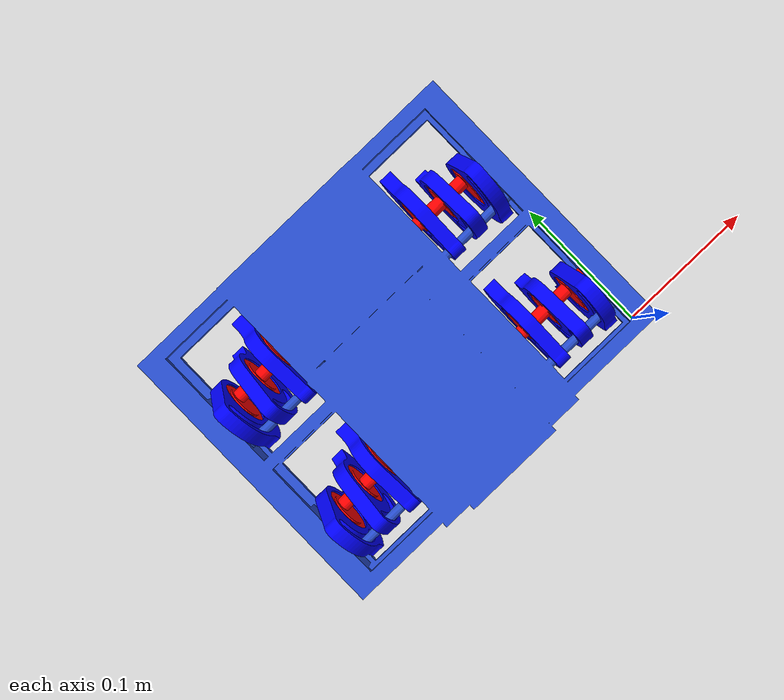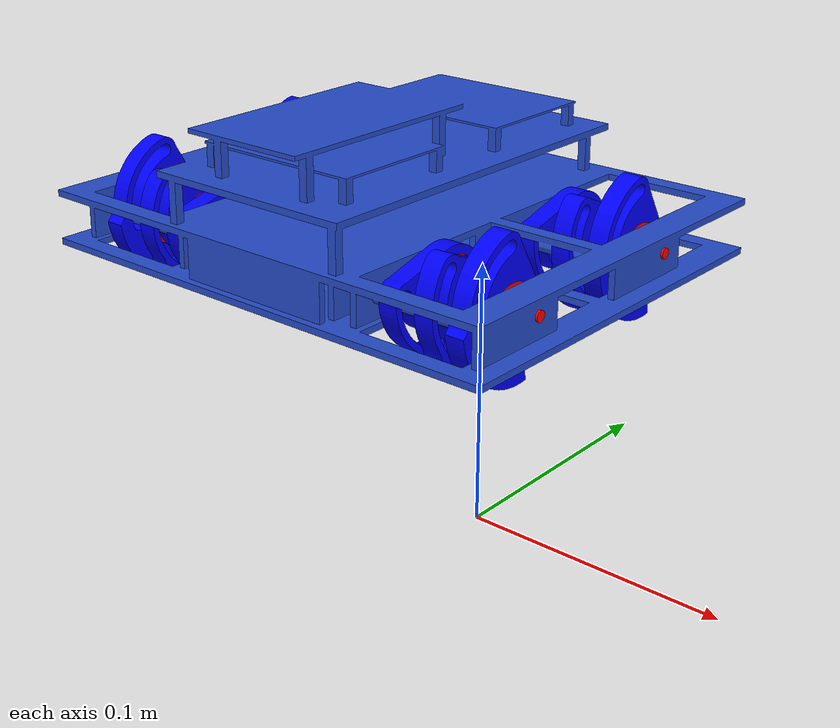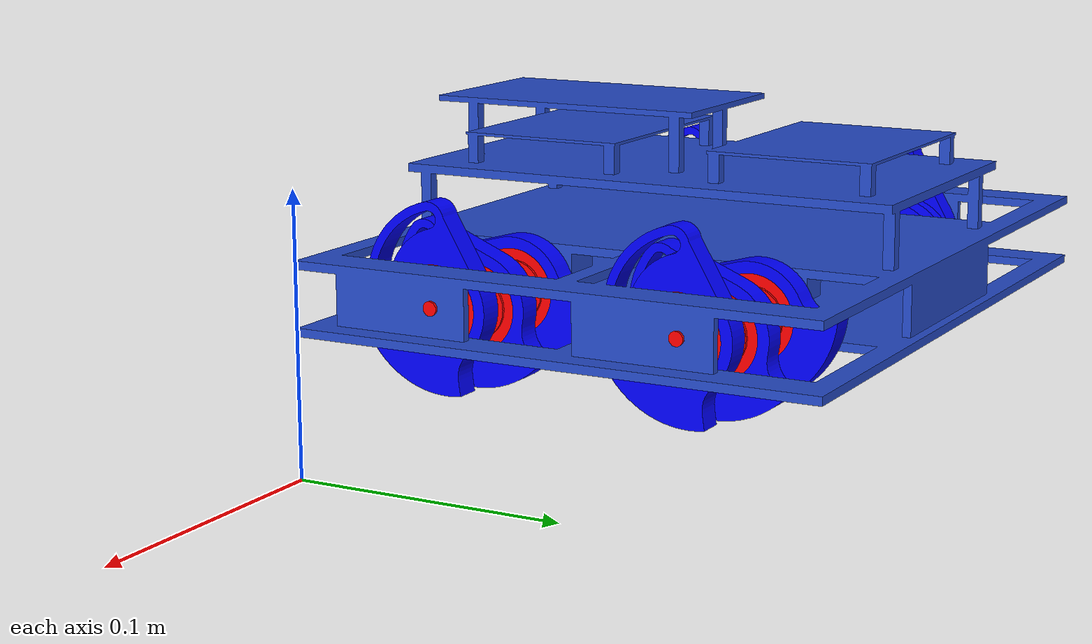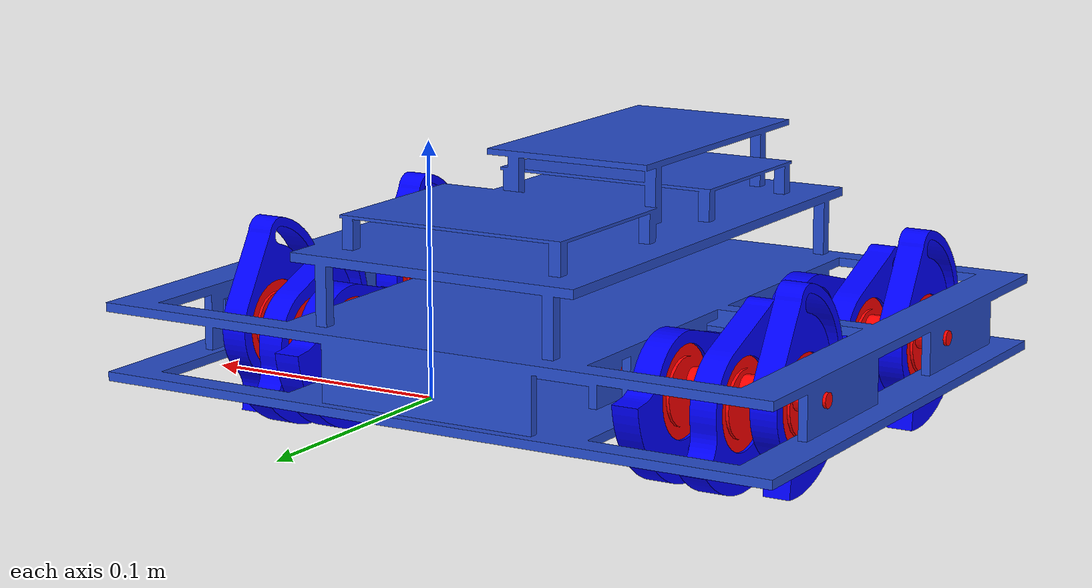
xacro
<robot name="hekken" xmlns:xacro="http://ros.org/wiki/xacro">

    <xacro:macro name="crank_left" params="parent child xyz">
        <joint name="${child}_joint" type="continuous">
            <origin xyz="${xyz}" rpy="0 0 0"/>
            <parent link="${parent}"/>
            <child link="${child}_link"/>
            <axis xyz="1 0 0"/>
            <limit velocity="10.0" effort="0.2" />
            <dynamics damping="0.1"/>
        </joint>
        <transmission name="${child}_move" type="SimpleTransmission">
            <type>transmission_interface/SimpleTransmission</type>
            <actuator name="${child}_motor">
                <mechanicalReduction>1</mechanicalReduction>
            </actuator>
            <joint name="${child}_joint">
                <hardwareInterface>hardware_interface/VelocityJointInterface</hardwareInterface>
            </joint>
        </transmission>
        <link name="${child}_link">
            <visual>
                <geometry>
                    <mesh filename="package://tokuken_robot_description/models/base/crank2_lowp_ad_07.stl"/>
                </geometry>
                <material name="red">
                    <color rgba="1.0 0.0 0.0 2.0"/>
                </material>
            </visual>
            <collision>
                <geometry>
                    <mesh filename="package://tokuken_robot_description/models/base/crank2_lowp_ad_07.stl"/>
                </geometry>
            </collision>
            <inertial>
				<origin xyz="-0.037341 -0.000000002377 -0.002966" rpy="0 0 0"/>
				<mass value="0.111155"/>
				<inertia ixx="0.00001696" ixy="-0.000005133807" ixz="0.000000043631" iyy="0.00003475" iyz="-0.00002165" izz="0.00003573"/>
			</inertial>
        </link>
        <gazebo reference="${child}_link">
            <material>Gazebo/Red</material>
            <mu1 value="1.0" />
            <mu2 value="1.0" />
            <gravity>true</gravity>
            <minDepth>0.001</minDepth>
        </gazebo>
    </xacro:macro>

    <xacro:macro name="crank_right" params="parent child xyz">
        <joint name="${child}_joint" type="continuous">
            <origin xyz="${xyz}" rpy="0 0 0"/>
            <parent link="${parent}"/>
            <child link="${child}_link"/>
            <axis xyz="1 0 0"/>
            <limit velocity="10.0" effort="0.2" />
            <dynamics damping="0.1"/>
        </joint>
        <transmission name="${child}_move" type="SimpleTransmission">
            <type>transmission_interface/SimpleTransmission</type>
            <actuator name="${child}_motor">
                <mechanicalReduction>1</mechanicalReduction>
            </actuator>
            <joint name="${child}_joint">
                <hardwareInterface>hardware_interface/VelocityJointInterface</hardwareInterface>
            </joint>
        </transmission>
        <link name="${child}_link">
            <visual>
                <geometry>
                    <mesh filename="package://tokuken_robot_description/models/base/crank1_lowp_ad_07.stl"/>
                </geometry>
                <material name="red"/>
            </visual>
            <collision>
                <geometry>
                    <mesh filename="package://tokuken_robot_description/models/base/crank1_lowp_ad_07.stl"/>
                </geometry>
            </collision>
            <inertial>
				<origin xyz="0.037341 -0.000000002377 -0.002966" rpy="0 0 0"/>
				<mass value="0.111155"/>
				<inertia ixx="0.00001696" ixy="0.000005133807" ixz="-0.000000043631" iyy="0.00003475" iyz="0.00002165" izz="0.00003573"/>
			</inertial>
        </link>
        <gazebo reference="${child}_link">
            <material>Gazebo/Red</material>
            <mu1 value="1.0" />
            <mu2 value="1.0" />
            <gravity>true</gravity>
            <minDepth>0.001</minDepth>
        </gazebo>
    </xacro:macro>

    <xacro:macro name="asi_left" params="parent child xyz rpy">
        <joint name="${child}_joint" type="revolute">
            <origin xyz="${xyz}" rpy="${rpy}"/>
            <parent link="${parent}"/>
            <child link="${child}_link"/>
            <axis xyz="1 0 0"/>
            <limit lower="${radians(-52)}" upper="${radians(38)}" effort="1.0" velocity="10.0"/>
        </joint>
        <link name="${child}_link">
            <visual>
                <geometry>
                    <mesh filename="package://tokuken_robot_description/models/base/asi_2_blen_low.stl"/>
                </geometry>
                <material name="green">
                    <color rgba="0.0 0.0 1.0 2.0"/>
                </material>
            </visual>
            <collision>
                <geometry>
                    <mesh filename="package://tokuken_robot_description/models/base/asi_2_blen_low.stl"/>
                </geometry>
            </collision>
            <inertial>
				<origin xyz="-0.0045155 -0.00563879 -0.00377687" rpy="0 0 0"/>
				<mass value="0.010706"/>
				<inertia ixx="0.000005401807" ixy="0.000000000185" ixz="0.000000000496" iyy="0.000003139093" iyz="-0.00000098431" izz="0.000002411247"/>
			</inertial>
        </link>
        <gazebo reference="${child}_link">
            <material>Gazebo/Green</material>
            <mu1 value="1.0" />
            <mu2 value="1.0" />
            <gravity>true</gravity>
        </gazebo>
    </xacro:macro>

    <xacro:macro name="asi_right" params="parent child xyz rpy">
        <joint name="${child}_joint" type="revolute">
            <origin xyz="${xyz}" rpy="${rpy}"/>
            <parent link="${parent}"/>
            <child link="${child}_link"/>
            <axis xyz="1 0 0"/>
            <limit lower="${radians(-52)}" upper="${radians(38)}" effort="1.0" velocity="10.0"/>
        </joint>
        <link name="${child}_link">
            <visual>
                <geometry>
                    <mesh filename="package://tokuken_robot_description/models/base/asi_1_blen_low.stl"/>
                </geometry>
                <material name="green"/>
            </visual>
            <collision>
                <geometry>
                    <mesh filename="package://tokuken_robot_description/models/base/asi_1_blen_low_3_ad.stl"/>
                </geometry>
            </collision>
            <inertial>
				<origin xyz="0.0044845 -0.00563879 -0.00377687" rpy="0 0 0"/>
				<mass value="0.010706"/>
				<inertia ixx="0.000005401807" ixy="0.000000000185" ixz="0.000000000496" iyy="0.000003139093" iyz="-0.00000098431" izz="0.000002411247"/>
			</inertial>
        </link>
        <gazebo reference="${child}_link">
            <material>Gazebo/Green</material>
            <mu1 value="1.0" />
            <mu2 value="1.0" />
            <gravity>true</gravity>
        </gazebo>
    </xacro:macro>

    <link name="base_link"/>

    <joint name="body_joint" type="fixed">
        <parent link="base_link"/>
        <child link="body_link"/>
        <origin xyz="0.0 0.0 0.05" rpy="0 0 0"/>
    </joint>
    <link name="body_link">
        <visual name="body">
            <geometry>
                <mesh filename="package://tokuken_robot_description/models/base/base_blen_low_3.stl"/>
            </geometry>
        </visual>
        <collision>
            <geometry>
                <mesh filename="package://tokuken_robot_description/models/base/base_blen_low_3.stl"/>
            </geometry>
        </collision>
        <inertial>
            <origin xyz="-0.12003 0.0885733 0.024818" rpy="0 0 0"/>
            <mass value="0.323853"/>
			<inertia ixx="0.001101" ixy="-0.000000019489" ixz="-0.00000032811" iyy="0.001144" iyz="-0.00002903" izz="0.001950"/>
		</inertial>
    </link>
    <gazebo reference="body_link">
        <material>Gazebo/Blue</material>
        <mu1 value="1.0" />
        <mu2 value="1.0" />
        <gravity>true</gravity>
        <minDepth>0.001</minDepth>
    </gazebo>

    <xacro:crank_left parent="body_link" child="b_crank" xyz="-0.1623 0.1375 0.013"/>
    <xacro:crank_left parent="body_link" child="c_crank" xyz="-0.1623 0.0475 0.013"/>

    <xacro:crank_right parent="body_link" child="d_crank" xyz="-0.0777 0.0475 0.013"/>
    <xacro:crank_right parent="body_link" child="a_crank" xyz="-0.0777 0.1375 0.013"/>

    <xacro:asi_left parent="b_crank_link" child="b_asi_1" xyz="-0.015 ${0.005*sin(radians(60))} ${-0.005*cos(radians(60))}" rpy="${radians(38)} 0 0"/>
    <xacro:asi_left parent="b_crank_link" child="b_asi_2" xyz="-0.033 0.0 -0.005" rpy="0 0 0"/>
    <xacro:asi_left parent="b_crank_link" child="b_asi_3" xyz="-0.051 ${-0.005*sin(radians(60))} ${-0.005*cos(radians(60))}" rpy="${radians(-37)} 0 0"/>

    <xacro:asi_left parent="c_crank_link" child="c_asi_1" xyz="-0.015 ${0.005*sin(radians(60))} ${-0.005*cos(radians(60))}" rpy="${radians(38)} 0 0"/>
    <xacro:asi_left parent="c_crank_link" child="c_asi_2" xyz="-0.033 0.0 -0.005" rpy="0 0 0"/>
    <xacro:asi_left parent="c_crank_link" child="c_asi_3" xyz="-0.051 ${-0.005*sin(radians(60))} ${-0.005*cos(radians(60))}" rpy="${radians(-37)} 0 0"/>

    <xacro:asi_right parent="a_crank_link" child="a_asi_1" xyz="0.015 ${0.005*sin(radians(60))} ${-0.005*cos(radians(60))}" rpy="${radians(38)} 0 0"/>
    <xacro:asi_right parent="a_crank_link" child="a_asi_2" xyz="0.033 0.0 -0.005" rpy="0 0 0"/>
    <xacro:asi_right parent="a_crank_link" child="a_asi_3" xyz="0.051 ${-0.005*sin(radians(60))} ${-0.005*cos(radians(60))}" rpy="${radians(-37)} 0 0"/>

    <xacro:asi_right parent="d_crank_link" child="d_asi_1" xyz="0.015 ${0.005*sin(radians(60))} ${-0.005*cos(radians(60))}" rpy="${radians(38)} 0 0"/>
    <xacro:asi_right parent="d_crank_link" child="d_asi_2" xyz="0.033 0.0 -0.005" rpy="0 0 0"/>
    <xacro:asi_right parent="d_crank_link" child="d_asi_3" xyz="0.051 ${-0.005*sin(radians(60))} ${-0.005*cos(radians(60))}" rpy="${radians(-37)} 0 0"/>

    <gazebo>
        <plugin name="gazebo_ros_control" filename="libgazebo_ros_control.so">
            <robotNamespace>/hekken</robotNamespace>
            <robotSimType>gazebo_ros_control/DefaultRobotHWSim</robotSimType>
            <legacyModeNS>true</legacyModeNS>
        </plugin>
    </gazebo>
</robot>
